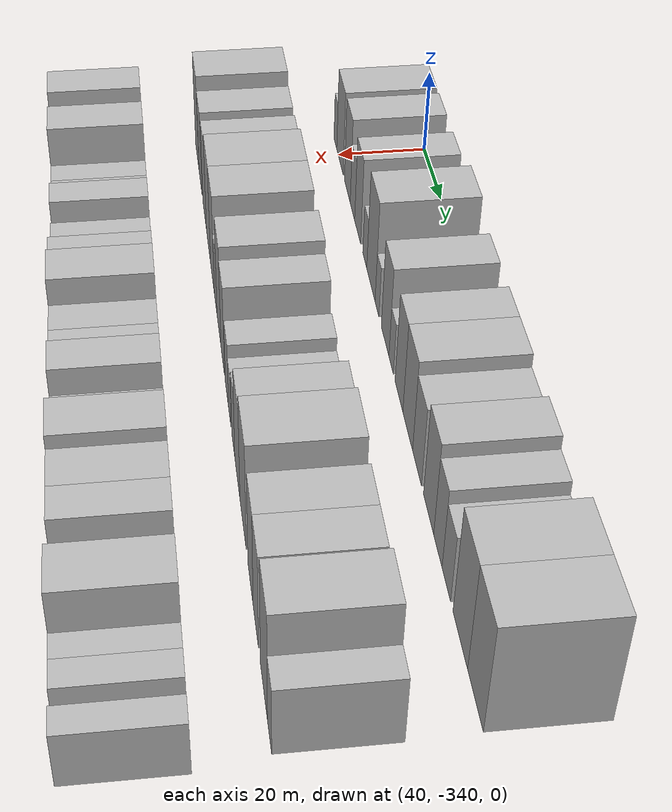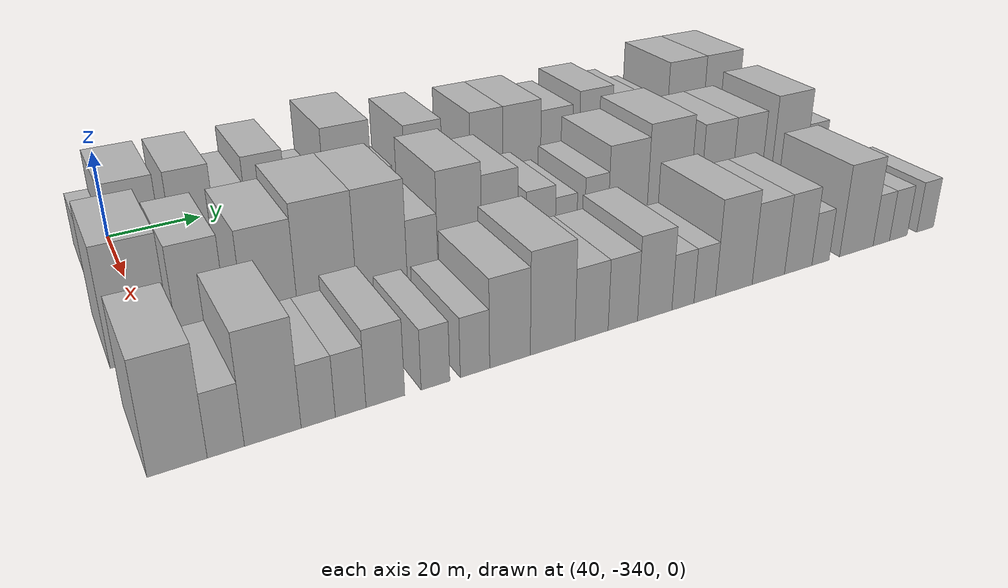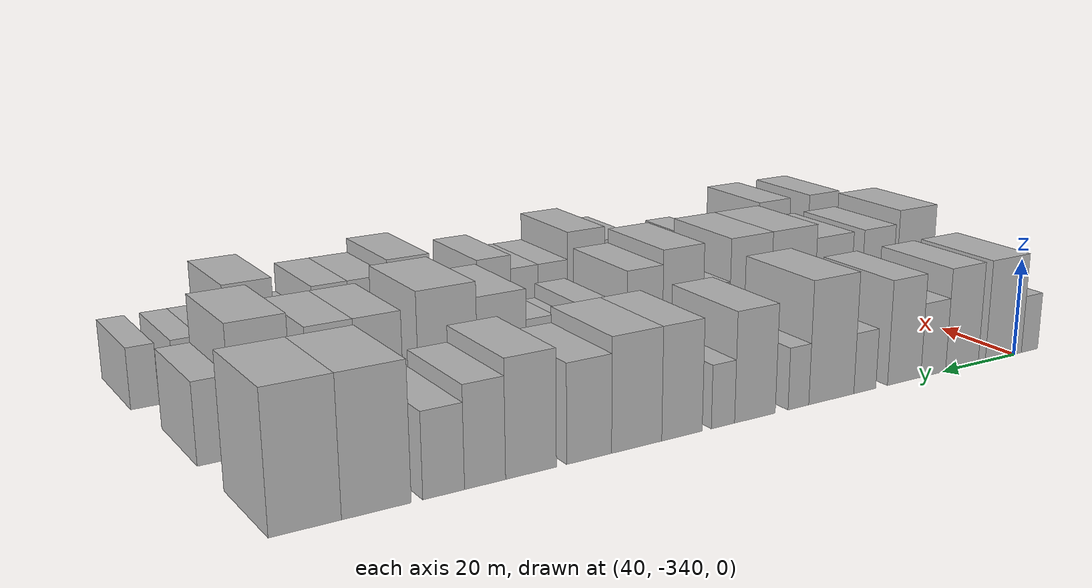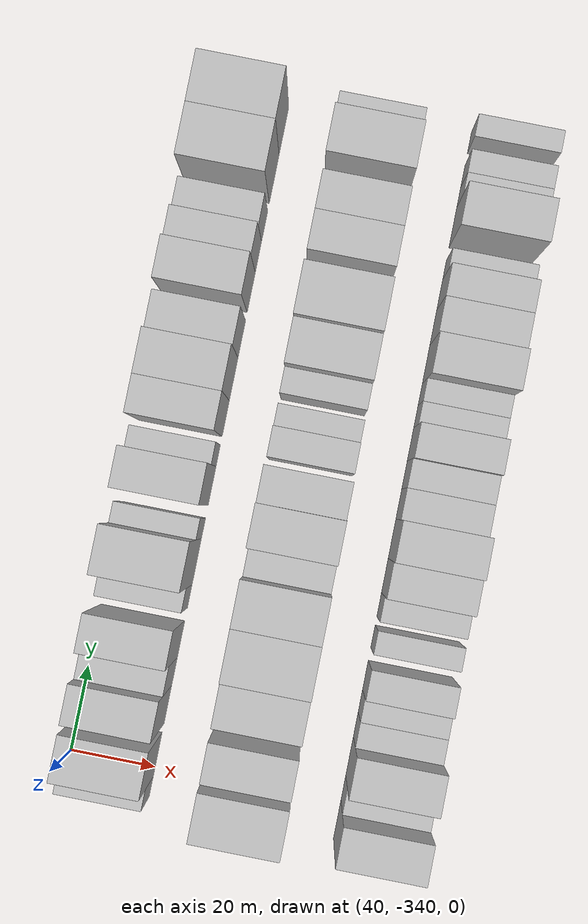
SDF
<sdf version="1.6">
 <world name="default">
  <model name="building_1">
   <static>1</static>
   <pose>50.0000 -344.5965 0 0.000000 0.000000 0.000000</pose>
   <link name="link">
    <pose>0 0 6.00 0 0 0</pose>
    <collision name="collision"><geometry><box><size>20.0000 4.8070 12.0000</size></box></geometry></collision>
    <visual name="visual">
     <cast_shadows>0</cast_shadows>
     <geometry><box><size>20.0000 4.8070 12.0000</size></box></geometry>
     <material>
      <script>
       <uri>model://HANNAS_wall/materials/scripts</uri>
       <uri>model://HANNAS_wall/materials/textures</uri>
       <name>vrc/HANNAS_wall</name>
      </script>
     </material>
    </visual>
   </link>
  </model>
  <model name="building_2">
   <static>1</static>
   <pose>50.0000 -336.9802 0 0.000000 0.000000 0.000000</pose>
   <link name="link">
    <pose>0 0 10.50 0 0 0</pose>
    <collision name="collision"><geometry><box><size>20.0000 10.4256 21.0000</size></box></geometry></collision>
    <visual name="visual">
     <cast_shadows>0</cast_shadows>
     <geometry><box><size>20.0000 10.4256 21.0000</size></box></geometry>
     <material>
      <script>
       <uri>model://HANNAS_wall/materials/scripts</uri>
       <uri>model://HANNAS_wall/materials/textures</uri>
       <name>vrc/HANNAS_wall</name>
      </script>
     </material>
    </visual>
   </link>
  </model>
  <model name="building_3">
   <static>1</static>
   <pose>50.0000 -325.2521 0 0.000000 0.000000 0.000000</pose>
   <link name="link">
    <pose>0 0 10.50 0 0 0</pose>
    <collision name="collision"><geometry><box><size>20.0000 9.0307 21.0000</size></box></geometry></collision>
    <visual name="visual">
     <cast_shadows>0</cast_shadows>
     <geometry><box><size>20.0000 9.0307 21.0000</size></box></geometry>
     <material>
      <script>
       <uri>model://HANNAS_wall/materials/scripts</uri>
       <uri>model://HANNAS_wall/materials/textures</uri>
       <name>vrc/HANNAS_wall</name>
      </script>
     </material>
    </visual>
   </link>
  </model>
  <model name="building_4">
   <static>1</static>
   <pose>50.0000 -317.3914 0 0.000000 0.000000 0.000000</pose>
   <link name="link">
    <pose>0 0 7.50 0 0 0</pose>
    <collision name="collision"><geometry><box><size>20.0000 6.6907 15.0000</size></box></geometry></collision>
    <visual name="visual">
     <cast_shadows>0</cast_shadows>
     <geometry><box><size>20.0000 6.6907 15.0000</size></box></geometry>
     <material>
      <script>
       <uri>model://HANNAS_wall/materials/scripts</uri>
       <uri>model://HANNAS_wall/materials/textures</uri>
       <name>vrc/HANNAS_wall</name>
      </script>
     </material>
    </visual>
   </link>
  </model>
  <model name="building_5">
   <static>1</static>
   <pose>50.0000 -309.6811 0 0.000000 0.000000 0.000000</pose>
   <link name="link">
    <pose>0 0 10.50 0 0 0</pose>
    <collision name="collision"><geometry><box><size>20.0000 8.7298 21.0000</size></box></geometry></collision>
    <visual name="visual">
     <cast_shadows>0</cast_shadows>
     <geometry><box><size>20.0000 8.7298 21.0000</size></box></geometry>
     <material>
      <script>
       <uri>model://HANNAS_wall/materials/scripts</uri>
       <uri>model://HANNAS_wall/materials/textures</uri>
       <name>vrc/HANNAS_wall</name>
      </script>
     </material>
    </visual>
   </link>
  </model>
  <model name="building_6">
   <static>1</static>
   <pose>50.0000 -299.5352 0 0.000000 0.000000 0.000000</pose>
   <link name="link">
    <pose>0 0 6.00 0 0 0</pose>
    <collision name="collision"><geometry><box><size>20.0000 5.5620 12.0000</size></box></geometry></collision>
    <visual name="visual">
     <cast_shadows>0</cast_shadows>
     <geometry><box><size>20.0000 5.5620 12.0000</size></box></geometry>
     <material>
      <script>
       <uri>model://HANNAS_wall/materials/scripts</uri>
       <uri>model://HANNAS_wall/materials/textures</uri>
       <name>vrc/HANNAS_wall</name>
      </script>
     </material>
    </visual>
   </link>
  </model>
  <model name="building_7">
   <static>1</static>
   <pose>50.0000 -291.2199 0 0.000000 0.000000 0.000000</pose>
   <link name="link">
    <pose>0 0 12.00 0 0 0</pose>
    <collision name="collision"><geometry><box><size>20.0000 11.0687 24.0000</size></box></geometry></collision>
    <visual name="visual">
     <cast_shadows>0</cast_shadows>
     <geometry><box><size>20.0000 11.0687 24.0000</size></box></geometry>
     <material>
      <script>
       <uri>model://HANNAS_wall/materials/scripts</uri>
       <uri>model://HANNAS_wall/materials/textures</uri>
       <name>vrc/HANNAS_wall</name>
      </script>
     </material>
    </visual>
   </link>
  </model>
  <model name="building_8">
   <static>1</static>
   <pose>50.0000 -283.2138 0 0.000000 0.000000 0.000000</pose>
   <link name="link">
    <pose>0 0 6.00 0 0 0</pose>
    <collision name="collision"><geometry><box><size>20.0000 4.9435 12.0000</size></box></geometry></collision>
    <visual name="visual">
     <cast_shadows>0</cast_shadows>
     <geometry><box><size>20.0000 4.9435 12.0000</size></box></geometry>
     <material>
      <script>
       <uri>model://HANNAS_wall/materials/scripts</uri>
       <uri>model://HANNAS_wall/materials/textures</uri>
       <name>vrc/HANNAS_wall</name>
      </script>
     </material>
    </visual>
   </link>
  </model>
  <model name="building_9">
   <static>1</static>
   <pose>50.0000 -273.0751 0 0.000000 0.000000 0.000000</pose>
   <link name="link">
    <pose>0 0 10.50 0 0 0</pose>
    <collision name="collision"><geometry><box><size>20.0000 9.3339 21.0000</size></box></geometry></collision>
    <visual name="visual">
     <cast_shadows>0</cast_shadows>
     <geometry><box><size>20.0000 9.3339 21.0000</size></box></geometry>
     <material>
      <script>
       <uri>model://HANNAS_wall/materials/scripts</uri>
       <uri>model://HANNAS_wall/materials/textures</uri>
       <name>vrc/HANNAS_wall</name>
      </script>
     </material>
    </visual>
   </link>
  </model>
  <model name="building_10">
   <static>1</static>
   <pose>50.0000 -265.8114 0 0.000000 0.000000 0.000000</pose>
   <link name="link">
    <pose>0 0 6.00 0 0 0</pose>
    <collision name="collision"><geometry><box><size>20.0000 5.1935 12.0000</size></box></geometry></collision>
    <visual name="visual">
     <cast_shadows>0</cast_shadows>
     <geometry><box><size>20.0000 5.1935 12.0000</size></box></geometry>
     <material>
      <script>
       <uri>model://HANNAS_wall/materials/scripts</uri>
       <uri>model://HANNAS_wall/materials/textures</uri>
       <name>vrc/HANNAS_wall</name>
      </script>
     </material>
    </visual>
   </link>
  </model>
  <model name="building_11">
   <static>1</static>
   <pose>50.0000 -256.8526 0 0.000000 0.000000 0.000000</pose>
   <link name="link">
    <pose>0 0 10.50 0 0 0</pose>
    <collision name="collision"><geometry><box><size>20.0000 8.7240 21.0000</size></box></geometry></collision>
    <visual name="visual">
     <cast_shadows>0</cast_shadows>
     <geometry><box><size>20.0000 8.7240 21.0000</size></box></geometry>
     <material>
      <script>
       <uri>model://HANNAS_wall/materials/scripts</uri>
       <uri>model://HANNAS_wall/materials/textures</uri>
       <name>vrc/HANNAS_wall</name>
      </script>
     </material>
    </visual>
   </link>
  </model>
  <model name="building_12">
   <static>1</static>
   <pose>50.0000 -247.2860 0 0.000000 0.000000 0.000000</pose>
   <link name="link">
    <pose>0 0 10.50 0 0 0</pose>
    <collision name="collision"><geometry><box><size>20.0000 10.4093 21.0000</size></box></geometry></collision>
    <visual name="visual">
     <cast_shadows>0</cast_shadows>
     <geometry><box><size>20.0000 10.4093 21.0000</size></box></geometry>
     <material>
      <script>
       <uri>model://HANNAS_wall/materials/scripts</uri>
       <uri>model://HANNAS_wall/materials/textures</uri>
       <name>vrc/HANNAS_wall</name>
      </script>
     </material>
    </visual>
   </link>
  </model>
  <model name="building_13">
   <static>1</static>
   <pose>50.0000 -237.5903 0 0.000000 0.000000 0.000000</pose>
   <link name="link">
    <pose>0 0 9.00 0 0 0</pose>
    <collision name="collision"><geometry><box><size>20.0000 8.9820 18.0000</size></box></geometry></collision>
    <visual name="visual">
     <cast_shadows>0</cast_shadows>
     <geometry><box><size>20.0000 8.9820 18.0000</size></box></geometry>
     <material>
      <script>
       <uri>model://HANNAS_wall/materials/scripts</uri>
       <uri>model://HANNAS_wall/materials/textures</uri>
       <name>vrc/HANNAS_wall</name>
      </script>
     </material>
    </visual>
   </link>
  </model>
  <model name="building_14">
   <static>1</static>
   <pose>50.0000 -226.2633 0 0.000000 0.000000 0.000000</pose>
   <link name="link">
    <pose>0 0 10.50 0 0 0</pose>
    <collision name="collision"><geometry><box><size>20.0000 9.6720 21.0000</size></box></geometry></collision>
    <visual name="visual">
     <cast_shadows>0</cast_shadows>
     <geometry><box><size>20.0000 9.6720 21.0000</size></box></geometry>
     <material>
      <script>
       <uri>model://HANNAS_wall/materials/scripts</uri>
       <uri>model://HANNAS_wall/materials/textures</uri>
       <name>vrc/HANNAS_wall</name>
      </script>
     </material>
    </visual>
   </link>
  </model>
  <model name="building_15">
   <static>1</static>
   <pose>50.0000 -217.6535 0 0.000000 0.000000 0.000000</pose>
   <link name="link">
    <pose>0 0 9.00 0 0 0</pose>
    <collision name="collision"><geometry><box><size>20.0000 7.5478 18.0000</size></box></geometry></collision>
    <visual name="visual">
     <cast_shadows>0</cast_shadows>
     <geometry><box><size>20.0000 7.5478 18.0000</size></box></geometry>
     <material>
      <script>
       <uri>model://HANNAS_wall/materials/scripts</uri>
       <uri>model://HANNAS_wall/materials/textures</uri>
       <name>vrc/HANNAS_wall</name>
      </script>
     </material>
    </visual>
   </link>
  </model>
  <model name="building_16">
   <static>1</static>
   <pose>50.0000 -210.1589 0 0.000000 0.000000 0.000000</pose>
   <link name="link">
    <pose>0 0 7.50 0 0 0</pose>
    <collision name="collision"><geometry><box><size>20.0000 7.4415 15.0000</size></box></geometry></collision>
    <visual name="visual">
     <cast_shadows>0</cast_shadows>
     <geometry><box><size>20.0000 7.4415 15.0000</size></box></geometry>
     <material>
      <script>
       <uri>model://HANNAS_wall/materials/scripts</uri>
       <uri>model://HANNAS_wall/materials/textures</uri>
       <name>vrc/HANNAS_wall</name>
      </script>
     </material>
    </visual>
   </link>
  </model>
  <model name="building_17">
   <static>1</static>
   <pose>50.0000 -198.5323 0 0.000000 0.000000 0.000000</pose>
   <link name="link">
    <pose>0 0 12.00 0 0 0</pose>
    <collision name="collision"><geometry><box><size>20.0000 11.8116 24.0000</size></box></geometry></collision>
    <visual name="visual">
     <cast_shadows>0</cast_shadows>
     <geometry><box><size>20.0000 11.8116 24.0000</size></box></geometry>
     <material>
      <script>
       <uri>model://HANNAS_wall/materials/scripts</uri>
       <uri>model://HANNAS_wall/materials/textures</uri>
       <name>vrc/HANNAS_wall</name>
      </script>
     </material>
    </visual>
   </link>
  </model>
  <model name="building_18">
   <static>1</static>
   <pose>50.0000 -186.7275 0 0.000000 0.000000 0.000000</pose>
   <link name="link">
    <pose>0 0 12.00 0 0 0</pose>
    <collision name="collision"><geometry><box><size>20.0000 11.7980 24.0000</size></box></geometry></collision>
    <visual name="visual">
     <cast_shadows>0</cast_shadows>
     <geometry><box><size>20.0000 11.7980 24.0000</size></box></geometry>
     <material>
      <script>
       <uri>model://HANNAS_wall/materials/scripts</uri>
       <uri>model://HANNAS_wall/materials/textures</uri>
       <name>vrc/HANNAS_wall</name>
      </script>
     </material>
    </visual>
   </link>
  </model>
  <model name="building_80">
   <static>1</static>
   <pose>82.0000 -342.5833 0 0.000000 0.000000 0.000000</pose>
   <link name="link">
    <pose>0 0 12.00 0 0 0</pose>
    <collision name="collision"><geometry><box><size>20.0000 10.8334 24.0000</size></box></geometry></collision>
    <visual name="visual">
     <cast_shadows>0</cast_shadows>
     <geometry><box><size>20.0000 10.8334 24.0000</size></box></geometry>
     <material>
      <script>
       <uri>model://HANNAS_wall/materials/scripts</uri>
       <uri>model://HANNAS_wall/materials/textures</uri>
       <name>vrc/HANNAS_wall</name>
      </script>
     </material>
    </visual>
   </link>
  </model>
  <model name="building_81">
   <static>1</static>
   <pose>82.0000 -331.6404 0 0.000000 0.000000 0.000000</pose>
   <link name="link">
    <pose>0 0 10.50 0 0 0</pose>
    <collision name="collision"><geometry><box><size>20.0000 9.0525 21.0000</size></box></geometry></collision>
    <visual name="visual">
     <cast_shadows>0</cast_shadows>
     <geometry><box><size>20.0000 9.0525 21.0000</size></box></geometry>
     <material>
      <script>
       <uri>model://HANNAS_wall/materials/scripts</uri>
       <uri>model://HANNAS_wall/materials/textures</uri>
       <name>vrc/HANNAS_wall</name>
      </script>
     </material>
    </visual>
   </link>
  </model>
  <model name="building_82">
   <static>1</static>
   <pose>82.0000 -319.0144 0 0.000000 0.000000 0.000000</pose>
   <link name="link">
    <pose>0 0 10.50 0 0 0</pose>
    <collision name="collision"><geometry><box><size>20.0000 10.1995 21.0000</size></box></geometry></collision>
    <visual name="visual">
     <cast_shadows>0</cast_shadows>
     <geometry><box><size>20.0000 10.1995 21.0000</size></box></geometry>
     <material>
      <script>
       <uri>model://HANNAS_wall/materials/scripts</uri>
       <uri>model://HANNAS_wall/materials/textures</uri>
       <name>vrc/HANNAS_wall</name>
      </script>
     </material>
    </visual>
   </link>
  </model>
  <model name="building_83">
   <static>1</static>
   <pose>82.0000 -307.9951 0 0.000000 0.000000 0.000000</pose>
   <link name="link">
    <pose>0 0 12.00 0 0 0</pose>
    <collision name="collision"><geometry><box><size>20.0000 11.8392 24.0000</size></box></geometry></collision>
    <visual name="visual">
     <cast_shadows>0</cast_shadows>
     <geometry><box><size>20.0000 11.8392 24.0000</size></box></geometry>
     <material>
      <script>
       <uri>model://HANNAS_wall/materials/scripts</uri>
       <uri>model://HANNAS_wall/materials/textures</uri>
       <name>vrc/HANNAS_wall</name>
      </script>
     </material>
    </visual>
   </link>
  </model>
  <model name="building_84">
   <static>1</static>
   <pose>82.0000 -296.7410 0 0.000000 0.000000 0.000000</pose>
   <link name="link">
    <pose>0 0 12.00 0 0 0</pose>
    <collision name="collision"><geometry><box><size>20.0000 10.6689 24.0000</size></box></geometry></collision>
    <visual name="visual">
     <cast_shadows>0</cast_shadows>
     <geometry><box><size>20.0000 10.6689 24.0000</size></box></geometry>
     <material>
      <script>
       <uri>model://HANNAS_wall/materials/scripts</uri>
       <uri>model://HANNAS_wall/materials/textures</uri>
       <name>vrc/HANNAS_wall</name>
      </script>
     </material>
    </visual>
   </link>
  </model>
  <model name="building_85">
   <static>1</static>
   <pose>82.0000 -288.0418 0 0.000000 0.000000 0.000000</pose>
   <link name="link">
    <pose>0 0 7.50 0 0 0</pose>
    <collision name="collision"><geometry><box><size>20.0000 6.7295 15.0000</size></box></geometry></collision>
    <visual name="visual">
     <cast_shadows>0</cast_shadows>
     <geometry><box><size>20.0000 6.7295 15.0000</size></box></geometry>
     <material>
      <script>
       <uri>model://HANNAS_wall/materials/scripts</uri>
       <uri>model://HANNAS_wall/materials/textures</uri>
       <name>vrc/HANNAS_wall</name>
      </script>
     </material>
    </visual>
   </link>
  </model>
  <model name="building_86">
   <static>1</static>
   <pose>82.0000 -279.7379 0 0.000000 0.000000 0.000000</pose>
   <link name="link">
    <pose>0 0 12.00 0 0 0</pose>
    <collision name="collision"><geometry><box><size>20.0000 9.8783 24.0000</size></box></geometry></collision>
    <visual name="visual">
     <cast_shadows>0</cast_shadows>
     <geometry><box><size>20.0000 9.8783 24.0000</size></box></geometry>
     <material>
      <script>
       <uri>model://HANNAS_wall/materials/scripts</uri>
       <uri>model://HANNAS_wall/materials/textures</uri>
       <name>vrc/HANNAS_wall</name>
      </script>
     </material>
    </visual>
   </link>
  </model>
  <model name="building_87">
   <static>1</static>
   <pose>82.0000 -270.5643 0 0.000000 0.000000 0.000000</pose>
   <link name="link">
    <pose>0 0 10.50 0 0 0</pose>
    <collision name="collision"><geometry><box><size>20.0000 8.4689 21.0000</size></box></geometry></collision>
    <visual name="visual">
     <cast_shadows>0</cast_shadows>
     <geometry><box><size>20.0000 8.4689 21.0000</size></box></geometry>
     <material>
      <script>
       <uri>model://HANNAS_wall/materials/scripts</uri>
       <uri>model://HANNAS_wall/materials/textures</uri>
       <name>vrc/HANNAS_wall</name>
      </script>
     </material>
    </visual>
   </link>
  </model>
  <model name="building_88">
   <static>1</static>
   <pose>82.0000 -260.7746 0 0.000000 0.000000 0.000000</pose>
   <link name="link">
    <pose>0 0 7.50 0 0 0</pose>
    <collision name="collision"><geometry><box><size>20.0000 7.1106 15.0000</size></box></geometry></collision>
    <visual name="visual">
     <cast_shadows>0</cast_shadows>
     <geometry><box><size>20.0000 7.1106 15.0000</size></box></geometry>
     <material>
      <script>
       <uri>model://HANNAS_wall/materials/scripts</uri>
       <uri>model://HANNAS_wall/materials/textures</uri>
       <name>vrc/HANNAS_wall</name>
      </script>
     </material>
    </visual>
   </link>
  </model>
  <model name="building_89">
   <static>1</static>
   <pose>82.0000 -254.5340 0 0.000000 0.000000 0.000000</pose>
   <link name="link">
    <pose>0 0 6.00 0 0 0</pose>
    <collision name="collision"><geometry><box><size>20.0000 5.3706 12.0000</size></box></geometry></collision>
    <visual name="visual">
     <cast_shadows>0</cast_shadows>
     <geometry><box><size>20.0000 5.3706 12.0000</size></box></geometry>
     <material>
      <script>
       <uri>model://HANNAS_wall/materials/scripts</uri>
       <uri>model://HANNAS_wall/materials/textures</uri>
       <name>vrc/HANNAS_wall</name>
      </script>
     </material>
    </visual>
   </link>
  </model>
  <model name="building_90">
   <static>1</static>
   <pose>82.0000 -246.8210 0 0.000000 0.000000 0.000000</pose>
   <link name="link">
    <pose>0 0 7.50 0 0 0</pose>
    <collision name="collision"><geometry><box><size>20.0000 6.0552 15.0000</size></box></geometry></collision>
    <visual name="visual">
     <cast_shadows>0</cast_shadows>
     <geometry><box><size>20.0000 6.0552 15.0000</size></box></geometry>
     <material>
      <script>
       <uri>model://HANNAS_wall/materials/scripts</uri>
       <uri>model://HANNAS_wall/materials/textures</uri>
       <name>vrc/HANNAS_wall</name>
      </script>
     </material>
    </visual>
   </link>
  </model>
  <model name="building_91">
   <static>1</static>
   <pose>82.0000 -238.5926 0 0.000000 0.000000 0.000000</pose>
   <link name="link">
    <pose>0 0 10.50 0 0 0</pose>
    <collision name="collision"><geometry><box><size>20.0000 10.4016 21.0000</size></box></geometry></collision>
    <visual name="visual">
     <cast_shadows>0</cast_shadows>
     <geometry><box><size>20.0000 10.4016 21.0000</size></box></geometry>
     <material>
      <script>
       <uri>model://HANNAS_wall/materials/scripts</uri>
       <uri>model://HANNAS_wall/materials/textures</uri>
       <name>vrc/HANNAS_wall</name>
      </script>
     </material>
    </visual>
   </link>
  </model>
  <model name="building_92">
   <static>1</static>
   <pose>82.0000 -227.3992 0 0.000000 0.000000 0.000000</pose>
   <link name="link">
    <pose>0 0 12.00 0 0 0</pose>
    <collision name="collision"><geometry><box><size>20.0000 11.9852 24.0000</size></box></geometry></collision>
    <visual name="visual">
     <cast_shadows>0</cast_shadows>
     <geometry><box><size>20.0000 11.9852 24.0000</size></box></geometry>
     <material>
      <script>
       <uri>model://HANNAS_wall/materials/scripts</uri>
       <uri>model://HANNAS_wall/materials/textures</uri>
       <name>vrc/HANNAS_wall</name>
      </script>
     </material>
    </visual>
   </link>
  </model>
  <model name="building_93">
   <static>1</static>
   <pose>82.0000 -213.8375 0 0.000000 0.000000 0.000000</pose>
   <link name="link">
    <pose>0 0 10.50 0 0 0</pose>
    <collision name="collision"><geometry><box><size>20.0000 9.1382 21.0000</size></box></geometry></collision>
    <visual name="visual">
     <cast_shadows>0</cast_shadows>
     <geometry><box><size>20.0000 9.1382 21.0000</size></box></geometry>
     <material>
      <script>
       <uri>model://HANNAS_wall/materials/scripts</uri>
       <uri>model://HANNAS_wall/materials/textures</uri>
       <name>vrc/HANNAS_wall</name>
      </script>
     </material>
    </visual>
   </link>
  </model>
  <model name="building_94">
   <static>1</static>
   <pose>82.0000 -204.8208 0 0.000000 0.000000 0.000000</pose>
   <link name="link">
    <pose>0 0 10.50 0 0 0</pose>
    <collision name="collision"><geometry><box><size>20.0000 8.8951 21.0000</size></box></geometry></collision>
    <visual name="visual">
     <cast_shadows>0</cast_shadows>
     <geometry><box><size>20.0000 8.8951 21.0000</size></box></geometry>
     <material>
      <script>
       <uri>model://HANNAS_wall/materials/scripts</uri>
       <uri>model://HANNAS_wall/materials/textures</uri>
       <name>vrc/HANNAS_wall</name>
      </script>
     </material>
    </visual>
   </link>
  </model>
  <model name="building_95">
   <static>1</static>
   <pose>82.0000 -191.9780 0 0.000000 0.000000 0.000000</pose>
   <link name="link">
    <pose>0 0 12.00 0 0 0</pose>
    <collision name="collision"><geometry><box><size>20.0000 10.7905 24.0000</size></box></geometry></collision>
    <visual name="visual">
     <cast_shadows>0</cast_shadows>
     <geometry><box><size>20.0000 10.7905 24.0000</size></box></geometry>
     <material>
      <script>
       <uri>model://HANNAS_wall/materials/scripts</uri>
       <uri>model://HANNAS_wall/materials/textures</uri>
       <name>vrc/HANNAS_wall</name>
      </script>
     </material>
    </visual>
   </link>
  </model>
  <model name="building_96">
   <static>1</static>
   <pose>82.0000 -183.4511 0 0.000000 0.000000 0.000000</pose>
   <link name="link">
    <pose>0 0 7.50 0 0 0</pose>
    <collision name="collision"><geometry><box><size>20.0000 6.2634 15.0000</size></box></geometry></collision>
    <visual name="visual">
     <cast_shadows>0</cast_shadows>
     <geometry><box><size>20.0000 6.2634 15.0000</size></box></geometry>
     <material>
      <script>
       <uri>model://HANNAS_wall/materials/scripts</uri>
       <uri>model://HANNAS_wall/materials/textures</uri>
       <name>vrc/HANNAS_wall</name>
      </script>
     </material>
    </visual>
   </link>
  </model>
  <model name="building_157">
   <static>1</static>
   <pose>114.0000 -343.4896 0 0.000000 0.000000 0.000000</pose>
   <link name="link">
    <pose>0 0 10.50 0 0 0</pose>
    <collision name="collision"><geometry><box><size>20.0000 9.0207 21.0000</size></box></geometry></collision>
    <visual name="visual">
     <cast_shadows>0</cast_shadows>
     <geometry><box><size>20.0000 9.0207 21.0000</size></box></geometry>
     <material>
      <script>
       <uri>model://HANNAS_wall/materials/scripts</uri>
       <uri>model://HANNAS_wall/materials/textures</uri>
       <name>vrc/HANNAS_wall</name>
      </script>
     </material>
    </visual>
   </link>
  </model>
  <model name="building_158">
   <static>1</static>
   <pose>114.0000 -336.0896 0 0.000000 0.000000 0.000000</pose>
   <link name="link">
    <pose>0 0 6.00 0 0 0</pose>
    <collision name="collision"><geometry><box><size>20.0000 5.7794 12.0000</size></box></geometry></collision>
    <visual name="visual">
     <cast_shadows>0</cast_shadows>
     <geometry><box><size>20.0000 5.7794 12.0000</size></box></geometry>
     <material>
      <script>
       <uri>model://HANNAS_wall/materials/scripts</uri>
       <uri>model://HANNAS_wall/materials/textures</uri>
       <name>vrc/HANNAS_wall</name>
      </script>
     </material>
    </visual>
   </link>
  </model>
  <model name="building_159">
   <static>1</static>
   <pose>114.0000 -328.6041 0 0.000000 0.000000 0.000000</pose>
   <link name="link">
    <pose>0 0 10.50 0 0 0</pose>
    <collision name="collision"><geometry><box><size>20.0000 9.1916 21.0000</size></box></geometry></collision>
    <visual name="visual">
     <cast_shadows>0</cast_shadows>
     <geometry><box><size>20.0000 9.1916 21.0000</size></box></geometry>
     <material>
      <script>
       <uri>model://HANNAS_wall/materials/scripts</uri>
       <uri>model://HANNAS_wall/materials/textures</uri>
       <name>vrc/HANNAS_wall</name>
      </script>
     </material>
    </visual>
   </link>
  </model>
  <model name="building_160">
   <static>1</static>
   <pose>114.0000 -321.1253 0 0.000000 0.000000 0.000000</pose>
   <link name="link">
    <pose>0 0 6.00 0 0 0</pose>
    <collision name="collision"><geometry><box><size>20.0000 5.7660 12.0000</size></box></geometry></collision>
    <visual name="visual">
     <cast_shadows>0</cast_shadows>
     <geometry><box><size>20.0000 5.7660 12.0000</size></box></geometry>
     <material>
      <script>
       <uri>model://HANNAS_wall/materials/scripts</uri>
       <uri>model://HANNAS_wall/materials/textures</uri>
       <name>vrc/HANNAS_wall</name>
      </script>
     </material>
    </visual>
   </link>
  </model>
  <model name="building_161">
   <static>1</static>
   <pose>114.0000 -315.5777 0 0.000000 0.000000 0.000000</pose>
   <link name="link">
    <pose>0 0 6.00 0 0 0</pose>
    <collision name="collision"><geometry><box><size>20.0000 5.3294 12.0000</size></box></geometry></collision>
    <visual name="visual">
     <cast_shadows>0</cast_shadows>
     <geometry><box><size>20.0000 5.3294 12.0000</size></box></geometry>
     <material>
      <script>
       <uri>model://HANNAS_wall/materials/scripts</uri>
       <uri>model://HANNAS_wall/materials/textures</uri>
       <name>vrc/HANNAS_wall</name>
      </script>
     </material>
    </visual>
   </link>
  </model>
  <model name="building_162">
   <static>1</static>
   <pose>114.0000 -309.4420 0 0.000000 0.000000 0.000000</pose>
   <link name="link">
    <pose>0 0 7.50 0 0 0</pose>
    <collision name="collision"><geometry><box><size>20.0000 6.9420 15.0000</size></box></geometry></collision>
    <visual name="visual">
     <cast_shadows>0</cast_shadows>
     <geometry><box><size>20.0000 6.9420 15.0000</size></box></geometry>
     <material>
      <script>
       <uri>model://HANNAS_wall/materials/scripts</uri>
       <uri>model://HANNAS_wall/materials/textures</uri>
       <name>vrc/HANNAS_wall</name>
      </script>
     </material>
    </visual>
   </link>
  </model>
  <model name="building_163">
   <static>1</static>
   <pose>114.0000 -300.2762 0 0.000000 0.000000 0.000000</pose>
   <link name="link">
    <pose>0 0 6.00 0 0 0</pose>
    <collision name="collision"><geometry><box><size>20.0000 5.3896 12.0000</size></box></geometry></collision>
    <visual name="visual">
     <cast_shadows>0</cast_shadows>
     <geometry><box><size>20.0000 5.3896 12.0000</size></box></geometry>
     <material>
      <script>
       <uri>model://HANNAS_wall/materials/scripts</uri>
       <uri>model://HANNAS_wall/materials/textures</uri>
       <name>vrc/HANNAS_wall</name>
      </script>
     </material>
    </visual>
   </link>
  </model>
  <model name="building_164">
   <static>1</static>
   <pose>114.0000 -292.7198 0 0.000000 0.000000 0.000000</pose>
   <link name="link">
    <pose>0 0 6.00 0 0 0</pose>
    <collision name="collision"><geometry><box><size>20.0000 5.7230 12.0000</size></box></geometry></collision>
    <visual name="visual">
     <cast_shadows>0</cast_shadows>
     <geometry><box><size>20.0000 5.7230 12.0000</size></box></geometry>
     <material>
      <script>
       <uri>model://HANNAS_wall/materials/scripts</uri>
       <uri>model://HANNAS_wall/materials/textures</uri>
       <name>vrc/HANNAS_wall</name>
      </script>
     </material>
    </visual>
   </link>
  </model>
  <model name="building_165">
   <static>1</static>
   <pose>114.0000 -285.7574 0 0.000000 0.000000 0.000000</pose>
   <link name="link">
    <pose>0 0 9.00 0 0 0</pose>
    <collision name="collision"><geometry><box><size>20.0000 8.2019 18.0000</size></box></geometry></collision>
    <visual name="visual">
     <cast_shadows>0</cast_shadows>
     <geometry><box><size>20.0000 8.2019 18.0000</size></box></geometry>
     <material>
      <script>
       <uri>model://HANNAS_wall/materials/scripts</uri>
       <uri>model://HANNAS_wall/materials/textures</uri>
       <name>vrc/HANNAS_wall</name>
      </script>
     </material>
    </visual>
   </link>
  </model>
  <model name="building_166">
   <static>1</static>
   <pose>114.0000 -276.9743 0 0.000000 0.000000 0.000000</pose>
   <link name="link">
    <pose>0 0 10.50 0 0 0</pose>
    <collision name="collision"><geometry><box><size>20.0000 9.3641 21.0000</size></box></geometry></collision>
    <visual name="visual">
     <cast_shadows>0</cast_shadows>
     <geometry><box><size>20.0000 9.3641 21.0000</size></box></geometry>
     <material>
      <script>
       <uri>model://HANNAS_wall/materials/scripts</uri>
       <uri>model://HANNAS_wall/materials/textures</uri>
       <name>vrc/HANNAS_wall</name>
      </script>
     </material>
    </visual>
   </link>
  </model>
  <model name="building_167">
   <static>1</static>
   <pose>114.0000 -268.6585 0 0.000000 0.000000 0.000000</pose>
   <link name="link">
    <pose>0 0 7.50 0 0 0</pose>
    <collision name="collision"><geometry><box><size>20.0000 7.2676 15.0000</size></box></geometry></collision>
    <visual name="visual">
     <cast_shadows>0</cast_shadows>
     <geometry><box><size>20.0000 7.2676 15.0000</size></box></geometry>
     <material>
      <script>
       <uri>model://HANNAS_wall/materials/scripts</uri>
       <uri>model://HANNAS_wall/materials/textures</uri>
       <name>vrc/HANNAS_wall</name>
      </script>
     </material>
    </visual>
   </link>
  </model>
  <model name="building_168">
   <static>1</static>
   <pose>114.0000 -261.7057 0 0.000000 0.000000 0.000000</pose>
   <link name="link">
    <pose>0 0 7.50 0 0 0</pose>
    <collision name="collision"><geometry><box><size>20.0000 6.6378 15.0000</size></box></geometry></collision>
    <visual name="visual">
     <cast_shadows>0</cast_shadows>
     <geometry><box><size>20.0000 6.6378 15.0000</size></box></geometry>
     <material>
      <script>
       <uri>model://HANNAS_wall/materials/scripts</uri>
       <uri>model://HANNAS_wall/materials/textures</uri>
       <name>vrc/HANNAS_wall</name>
      </script>
     </material>
    </visual>
   </link>
  </model>
  <model name="building_169">
   <static>1</static>
   <pose>114.0000 -254.3785 0 0.000000 0.000000 0.000000</pose>
   <link name="link">
    <pose>0 0 9.00 0 0 0</pose>
    <collision name="collision"><geometry><box><size>20.0000 8.0166 18.0000</size></box></geometry></collision>
    <visual name="visual">
     <cast_shadows>0</cast_shadows>
     <geometry><box><size>20.0000 8.0166 18.0000</size></box></geometry>
     <material>
      <script>
       <uri>model://HANNAS_wall/materials/scripts</uri>
       <uri>model://HANNAS_wall/materials/textures</uri>
       <name>vrc/HANNAS_wall</name>
      </script>
     </material>
    </visual>
   </link>
  </model>
  <model name="building_170">
   <static>1</static>
   <pose>114.0000 -247.7168 0 0.000000 0.000000 0.000000</pose>
   <link name="link">
    <pose>0 0 6.00 0 0 0</pose>
    <collision name="collision"><geometry><box><size>20.0000 5.3068 12.0000</size></box></geometry></collision>
    <visual name="visual">
     <cast_shadows>0</cast_shadows>
     <geometry><box><size>20.0000 5.3068 12.0000</size></box></geometry>
     <material>
      <script>
       <uri>model://HANNAS_wall/materials/scripts</uri>
       <uri>model://HANNAS_wall/materials/textures</uri>
       <name>vrc/HANNAS_wall</name>
      </script>
     </material>
    </visual>
   </link>
  </model>
  <model name="building_171">
   <static>1</static>
   <pose>114.0000 -242.3974 0 0.000000 0.000000 0.000000</pose>
   <link name="link">
    <pose>0 0 6.00 0 0 0</pose>
    <collision name="collision"><geometry><box><size>20.0000 5.3320 12.0000</size></box></geometry></collision>
    <visual name="visual">
     <cast_shadows>0</cast_shadows>
     <geometry><box><size>20.0000 5.3320 12.0000</size></box></geometry>
     <material>
      <script>
       <uri>model://HANNAS_wall/materials/scripts</uri>
       <uri>model://HANNAS_wall/materials/textures</uri>
       <name>vrc/HANNAS_wall</name>
      </script>
     </material>
    </visual>
   </link>
  </model>
  <model name="building_172">
   <static>1</static>
   <pose>114.0000 -235.0854 0 0.000000 0.000000 0.000000</pose>
   <link name="link">
    <pose>0 0 10.50 0 0 0</pose>
    <collision name="collision"><geometry><box><size>20.0000 9.2921 21.0000</size></box></geometry></collision>
    <visual name="visual">
     <cast_shadows>0</cast_shadows>
     <geometry><box><size>20.0000 9.2921 21.0000</size></box></geometry>
     <material>
      <script>
       <uri>model://HANNAS_wall/materials/scripts</uri>
       <uri>model://HANNAS_wall/materials/textures</uri>
       <name>vrc/HANNAS_wall</name>
      </script>
     </material>
    </visual>
   </link>
  </model>
  <model name="building_173">
   <static>1</static>
   <pose>114.0000 -226.1638 0 0.000000 0.000000 0.000000</pose>
   <link name="link">
    <pose>0 0 9.00 0 0 0</pose>
    <collision name="collision"><geometry><box><size>20.0000 8.5511 18.0000</size></box></geometry></collision>
    <visual name="visual">
     <cast_shadows>0</cast_shadows>
     <geometry><box><size>20.0000 8.5511 18.0000</size></box></geometry>
     <material>
      <script>
       <uri>model://HANNAS_wall/materials/scripts</uri>
       <uri>model://HANNAS_wall/materials/textures</uri>
       <name>vrc/HANNAS_wall</name>
      </script>
     </material>
    </visual>
   </link>
  </model>
  <model name="building_174">
   <static>1</static>
   <pose>114.0000 -218.1457 0 0.000000 0.000000 0.000000</pose>
   <link name="link">
    <pose>0 0 9.00 0 0 0</pose>
    <collision name="collision"><geometry><box><size>20.0000 7.4851 18.0000</size></box></geometry></collision>
    <visual name="visual">
     <cast_shadows>0</cast_shadows>
     <geometry><box><size>20.0000 7.4851 18.0000</size></box></geometry>
     <material>
      <script>
       <uri>model://HANNAS_wall/materials/scripts</uri>
       <uri>model://HANNAS_wall/materials/textures</uri>
       <name>vrc/HANNAS_wall</name>
      </script>
     </material>
    </visual>
   </link>
  </model>
  <model name="building_175">
   <static>1</static>
   <pose>114.0000 -211.9959 0 0.000000 0.000000 0.000000</pose>
   <link name="link">
    <pose>0 0 6.00 0 0 0</pose>
    <collision name="collision"><geometry><box><size>20.0000 4.8145 12.0000</size></box></geometry></collision>
    <visual name="visual">
     <cast_shadows>0</cast_shadows>
     <geometry><box><size>20.0000 4.8145 12.0000</size></box></geometry>
     <material>
      <script>
       <uri>model://HANNAS_wall/materials/scripts</uri>
       <uri>model://HANNAS_wall/materials/textures</uri>
       <name>vrc/HANNAS_wall</name>
      </script>
     </material>
    </visual>
   </link>
  </model>
  <model name="building_176">
   <static>1</static>
   <pose>114.0000 -201.6880 0 0.000000 0.000000 0.000000</pose>
   <link name="link">
    <pose>0 0 10.50 0 0 0</pose>
    <collision name="collision"><geometry><box><size>20.0000 9.8012 21.0000</size></box></geometry></collision>
    <visual name="visual">
     <cast_shadows>0</cast_shadows>
     <geometry><box><size>20.0000 9.8012 21.0000</size></box></geometry>
     <material>
      <script>
       <uri>model://HANNAS_wall/materials/scripts</uri>
       <uri>model://HANNAS_wall/materials/textures</uri>
       <name>vrc/HANNAS_wall</name>
      </script>
     </material>
    </visual>
   </link>
  </model>
  <model name="building_177">
   <static>1</static>
   <pose>114.0000 -194.3316 0 0.000000 0.000000 0.000000</pose>
   <link name="link">
    <pose>0 0 6.00 0 0 0</pose>
    <collision name="collision"><geometry><box><size>20.0000 4.9117 12.0000</size></box></geometry></collision>
    <visual name="visual">
     <cast_shadows>0</cast_shadows>
     <geometry><box><size>20.0000 4.9117 12.0000</size></box></geometry>
     <material>
      <script>
       <uri>model://HANNAS_wall/materials/scripts</uri>
       <uri>model://HANNAS_wall/materials/textures</uri>
       <name>vrc/HANNAS_wall</name>
      </script>
     </material>
    </visual>
   </link>
  </model>
  <model name="building_178">
   <static>1</static>
   <pose>114.0000 -189.1570 0 0.000000 0.000000 0.000000</pose>
   <link name="link">
    <pose>0 0 6.00 0 0 0</pose>
    <collision name="collision"><geometry><box><size>20.0000 5.4375 12.0000</size></box></geometry></collision>
    <visual name="visual">
     <cast_shadows>0</cast_shadows>
     <geometry><box><size>20.0000 5.4375 12.0000</size></box></geometry>
     <material>
      <script>
       <uri>model://HANNAS_wall/materials/scripts</uri>
       <uri>model://HANNAS_wall/materials/textures</uri>
       <name>vrc/HANNAS_wall</name>
      </script>
     </material>
    </visual>
   </link>
  </model>
  <model name="building_179">
   <static>1</static>
   <pose>114.0000 -180.7997 0 0.000000 0.000000 0.000000</pose>
   <link name="link">
    <pose>0 0 6.00 0 0 0</pose>
    <collision name="collision"><geometry><box><size>20.0000 5.2770 12.0000</size></box></geometry></collision>
    <visual name="visual">
     <cast_shadows>0</cast_shadows>
     <geometry><box><size>20.0000 5.2770 12.0000</size></box></geometry>
     <material>
      <script>
       <uri>model://HANNAS_wall/materials/scripts</uri>
       <uri>model://HANNAS_wall/materials/textures</uri>
       <name>vrc/HANNAS_wall</name>
      </script>
     </material>
    </visual>
   </link>
  </model>
 </world>
</sdf>
